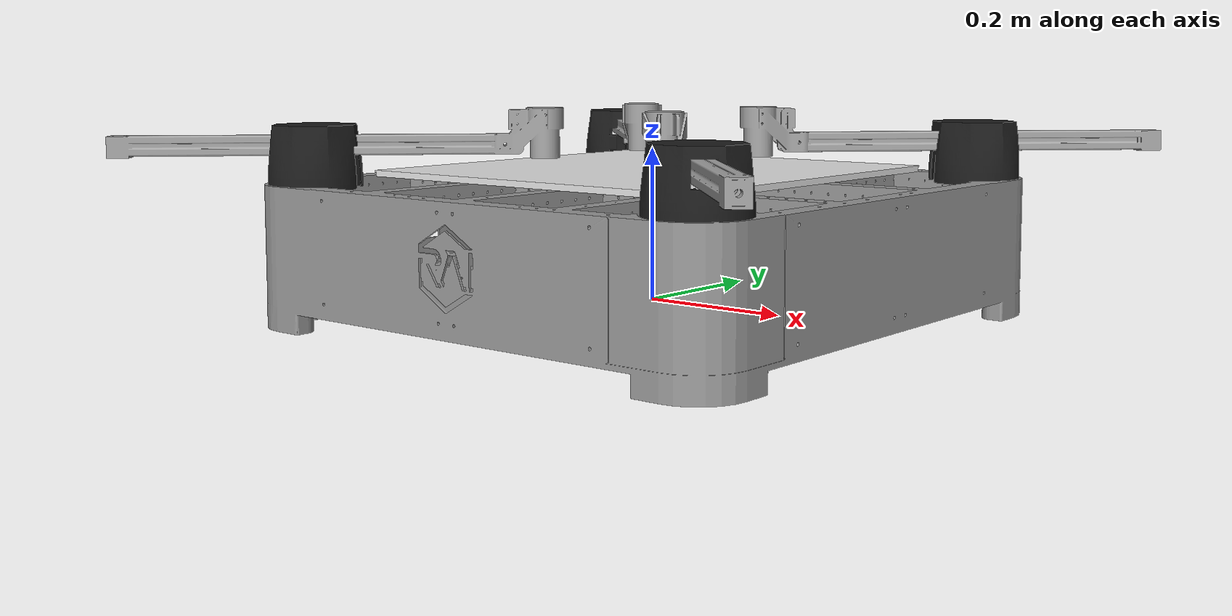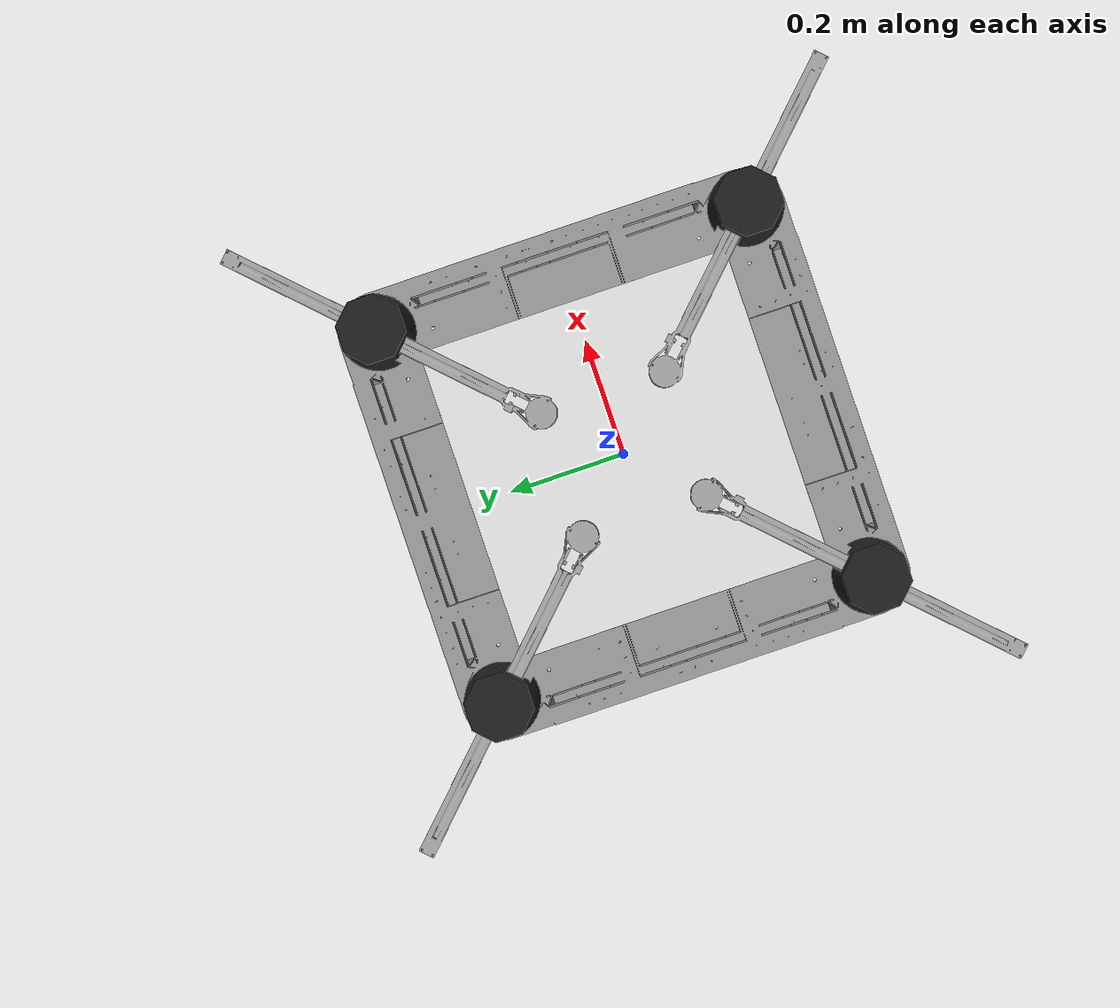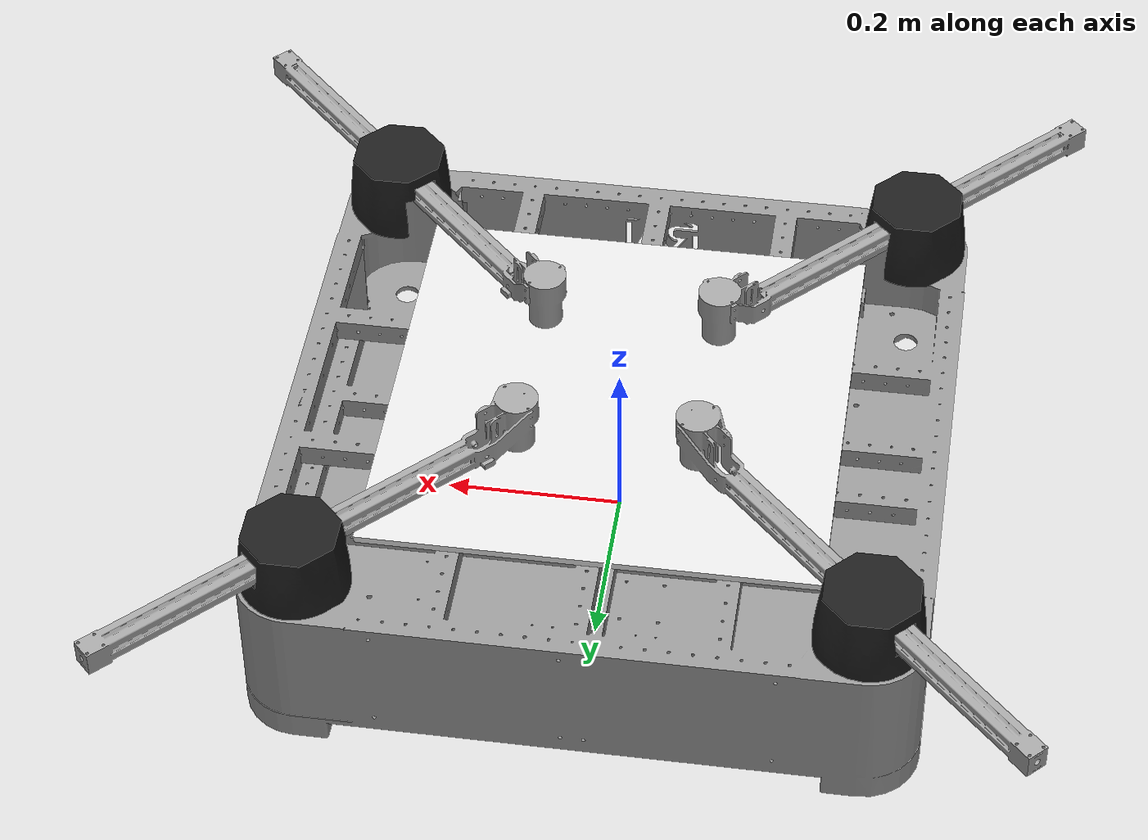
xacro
<?xml version="1.0"?>
<robot name="rai" xmlns:xacro="http://www.ros.org/wiki/xacro">
    <xacro:arg name="use_sim" default="false"/>
    <xacro:arg name="use_mock_hardware" default="false"/>

    <!-- Include generated urdf -->
    <xacro:include filename="$(find rai_description)/urdf/rai_geometry.urdf" />
    <xacro:include filename="$(find rai_description)/urdf/rai.ros2_control.xacro" />

    <link name="world"/>

    <joint name="world_fixed" type="fixed">
        <parent link="world"/>
        <child link="base_link"/>
    </joint>

    <gazebo>
        <self_collide>true</self_collide>
        <plugin filename="gz_ros2_control-system" name="gz_ros2_control::GazeboSimROS2ControlPlugin">
            <parameters>$(find rai_control)/config/ros2_controllers.yaml</parameters>
        </plugin>
    </gazebo>
</robot>

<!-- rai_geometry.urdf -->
<!-- Generated using onshape-to-robot -->
<!-- Onshape https://cad.onshape.com/documents/0031347e35259bad3644cd10/w/d8bc605a845f2cbf0a2bf906/e/dc9663babf9f6681d6773ecc -->
<robot name="rai">
  <!-- Link base_link -->
  <link name="base_link">
  </link>
  <!-- Link chassis -->
  <link name="chassis">
    <inertial>
      <origin xyz="0 0 0" rpy="0 0 0"/>
      <mass value="0.1"/>
      <inertia ixx="1e-3" ixy="0" ixz="0" iyy="1e-3" iyz="0" izz="1e-3"/>
    </inertial>
    <!-- Part chassis_parts -->
    <visual>
      <origin xyz="0.00100831 0.000428603 0.0422922" rpy="0 -0 0"/>
      <geometry>
        <mesh filename="package://rai_description/meshes/merged/chassis_visual.stl"/>
      </geometry>
      <material name="chassis_parts_material">
        <color rgba="0.6 0.6 0.6 1"/>
      </material>
    </visual>
  </link>
  <!-- Link canvas -->
  <link name="canvas">
    <inertial>
      <origin xyz="-0 -0 -0.00417976" rpy="0 0 0"/>
      <mass value="4.35842"/>
      <inertia ixx="0.10072" ixy="0" ixz="0" iyy="0.10072" iyz="0" izz="0.201392"/>
    </inertial>
    <!-- Part canvas_parts -->
    <visual>
      <origin xyz="-0 -0 -0.00417976" rpy="-3.14159 -0 1.5708"/>
      <geometry>
        <mesh filename="package://rai_description/meshes/merged/canvas_visual.stl"/>
      </geometry>
      <material name="canvas_parts_material">
        <color rgba="0.901961 0.901961 0.901961 1"/>
      </material>
    </visual>
  </link>
  <!-- Joint from chassis to canvas -->
  <joint name="canvas_revolute" type="continuous">
    <origin xyz="-0 0 0.166624" rpy="3.14159 0 1.5708"/>
    <parent link="chassis"/>
    <child link="canvas"/>
    <axis xyz="0 0 1"/>
    <limit effort="1.45" velocity="157"/>
  </joint>
  <!-- Link arm_gantry -->
  <link name="arm_gantry">
    <inertial>
      <origin xyz="-0.00282322 0.00326727 -0.0259266" rpy="0 0 0"/>
      <mass value="0.195145"/>
      <inertia ixx="0.000350023" ixy="-1.59913e-05" ixz="-1.6804e-05" iyy="0.000357074" iyz="1.92213e-05" izz="0.000463081"/>
    </inertial>
    <!-- Part arm_gantry_parts -->
    <visual>
      <origin xyz="-0.00282322 0.00326727 -0.0259266" rpy="0 0 -1.5708"/>
      <geometry>
        <mesh filename="package://rai_description/meshes/merged/arm_gantry_visual.stl"/>
      </geometry>
      <material name="arm_gantry_parts_material">
        <color rgba="0.117647 0.117647 0.117647 1"/>
      </material>
    </visual>
  </link>
  <!-- Link arm -->
  <link name="arm">
    <inertial>
      <origin xyz="-1.47334e-05 0.00795093 -0.30668" rpy="0 0 0"/>
      <mass value="0.516241"/>
      <inertia ixx="0.0168399" ixy="6.40609e-07" ixz="-7.46351e-07" iyy="0.0167911" iyz="-0.000598726" izz="0.000155782"/>
    </inertial>
    <!-- Part arm_parts -->
    <collision>
      <origin xyz="0.000495216 0.0114549 -0.253727" rpy="1.5708 -1.5696 2e-12"/>
      <geometry>
        <box size="0.51 0.03 0.03"/>
      </geometry>
    </collision>
    <collision>
      <origin xyz="0.000450512 -0.0085451 -0.548781" rpy="1.5708 0.821505 0"/>
      <geometry>
        <cylinder length="0.06" radius="0.025"/>
      </geometry>
    </collision>
    <visual>
      <origin xyz="-1.47334e-05 0.00795093 -0.30668" rpy="-1.5708 0.785398 3.14159"/>
      <geometry>
        <mesh filename="package://rai_description/meshes/merged/arm_visual.stl"/>
      </geometry>
      <material name="arm_parts_material">
        <color rgba="0.647059 0.647059 0.647059 1"/>
      </material>
    </visual>
  </link>
  <!-- Frame pen_1 (dummy link + fixed joint) -->
  <link name="pen_1">
    <origin xyz="0 0 0" rpy="0 -0 0"/>
    <inertial>
      <origin xyz="0 0 0" rpy="0 0 0"/>
      <mass value="1e-9"/>
      <inertia ixx="0" ixy="0" ixz="0" iyy="0" iyz="0" izz="0"/>
    </inertial>
  </link>
  <joint name="pen_1_frame" type="fixed">
    <origin xyz="0.0002 0.0313875 -0.549649" rpy="-1.5708 0.821505 -0"/>
    <parent link="arm"/>
    <child link="pen_1"/>
    <axis xyz="0 0 0"/>
  </joint>
  <!-- Joint from arm_gantry to arm -->
  <joint name="arm_slider_1" type="prismatic">
    <origin xyz="-0.181234 0.181234 -0.0135128" rpy="-1.5708 0 0.785398"/>
    <parent link="arm_gantry"/>
    <child link="arm"/>
    <axis xyz="0 0 1"/>
    <limit effort="90" velocity="0.25" lower="-0.1778" upper="0.174244"/>
  </joint>
  <!-- Joint from chassis to arm_gantry -->
  <joint name="arm_revolute_1" type="revolute">
    <origin xyz="-0.306801 -0.306801 0.233705" rpy="-0 0 1.5708"/>
    <parent link="chassis"/>
    <child link="arm_gantry"/>
    <axis xyz="0 0 1"/>
    <limit effort="0.61" velocity="157" lower="-3.141592653589793" upper="3.141592653589793"/>
  </joint>
  <!-- Link arm_gantry_2 -->
  <link name="arm_gantry_2">
    <inertial>
      <origin xyz="-0.00282322 0.00326727 -0.0259266" rpy="0 0 0"/>
      <mass value="0.195145"/>
      <inertia ixx="0.000350023" ixy="-1.59913e-05" ixz="-1.6804e-05" iyy="0.000357074" iyz="1.92213e-05" izz="0.000463081"/>
    </inertial>
    <!-- Part arm_gantry_2_parts -->
    <visual>
      <origin xyz="-0.00282322 0.00326727 -0.0259266" rpy="0 0 3.14159"/>
      <geometry>
        <mesh filename="package://rai_description/meshes/merged/arm_gantry_2_visual.stl"/>
      </geometry>
      <material name="arm_gantry_2_parts_material">
        <color rgba="0.117647 0.117647 0.117647 1"/>
      </material>
    </visual>
  </link>
  <!-- Link arm_2 -->
  <link name="arm_2">
    <inertial>
      <origin xyz="-1.47334e-05 0.00795093 -0.30668" rpy="0 0 0"/>
      <mass value="0.516241"/>
      <inertia ixx="0.0168399" ixy="6.40609e-07" ixz="-7.46351e-07" iyy="0.0167911" iyz="-0.000598726" izz="0.000155782"/>
    </inertial>
    <!-- Part arm_2_parts -->
    <collision>
      <origin xyz="0.000495216 0.0114549 -0.253727" rpy="1.5708 -1.5696 2e-12"/>
      <geometry>
        <box size="0.51 0.03 0.03"/>
      </geometry>
    </collision>
    <collision>
      <origin xyz="0.000450512 -0.0085451 -0.548781" rpy="1.5708 0.821505 -0"/>
      <geometry>
        <cylinder length="0.06" radius="0.025"/>
      </geometry>
    </collision>
    <visual>
      <origin xyz="-1.47334e-05 0.00795093 -0.30668" rpy="-1.5708 -0.785398 3.14159"/>
      <geometry>
        <mesh filename="package://rai_description/meshes/merged/arm_2_visual.stl"/>
      </geometry>
      <material name="arm_2_parts_material">
        <color rgba="0.647059 0.647059 0.647059 1"/>
      </material>
    </visual>
  </link>
  <!-- Frame pen_2 (dummy link + fixed joint) -->
  <link name="pen_2">
    <origin xyz="0 0 0" rpy="0 -0 0"/>
    <inertial>
      <origin xyz="0 0 0" rpy="0 0 0"/>
      <mass value="1e-9"/>
      <inertia ixx="0" ixy="0" ixz="0" iyy="0" iyz="0" izz="0"/>
    </inertial>
  </link>
  <joint name="pen_2_frame" type="fixed">
    <origin xyz="0.0002 0.0313875 -0.549649" rpy="-1.5708 0.821505 -0"/>
    <parent link="arm_2"/>
    <child link="pen_2"/>
    <axis xyz="0 0 0"/>
  </joint>
  <!-- Joint from arm_gantry_2 to arm_2 -->
  <joint name="arm_slider_2" type="prismatic">
    <origin xyz="-0.181234 0.181234 -0.0135128" rpy="-1.5708 0 0.785398"/>
    <parent link="arm_gantry_2"/>
    <child link="arm_2"/>
    <axis xyz="0 0 1"/>
    <limit effort="90" velocity="0.25" lower="-0.1778" upper="0.174244"/>
  </joint>
  <!-- Joint from chassis to arm_gantry_2 -->
  <joint name="arm_revolute_2" type="revolute">
    <origin xyz="0.306801 -0.306801 0.233705" rpy="0 0 -3.14159"/>
    <parent link="chassis"/>
    <child link="arm_gantry_2"/>
    <axis xyz="0 0 1"/>
    <limit effort="0.61" velocity="157" lower="-3.141592653589793" upper="3.141592653589793"/>
  </joint>
  <!-- Link arm_gantry_3 -->
  <link name="arm_gantry_3">
    <inertial>
      <origin xyz="-0.00282322 0.00326727 -0.0259266" rpy="0 0 0"/>
      <mass value="0.195145"/>
      <inertia ixx="0.000350023" ixy="-1.59913e-05" ixz="-1.6804e-05" iyy="0.000357074" iyz="1.92213e-05" izz="0.000463081"/>
    </inertial>
    <!-- Part arm_gantry_3_parts -->
    <visual>
      <origin xyz="-0.00282322 0.00326727 -0.0259266" rpy="0 0 1.5708"/>
      <geometry>
        <mesh filename="package://rai_description/meshes/merged/arm_gantry_3_visual.stl"/>
      </geometry>
      <material name="arm_gantry_3_parts_material">
        <color rgba="0.117647 0.117647 0.117647 1"/>
      </material>
    </visual>
  </link>
  <!-- Link arm_3 -->
  <link name="arm_3">
    <inertial>
      <origin xyz="-1.47334e-05 0.00795093 -0.30668" rpy="0 0 0"/>
      <mass value="0.516241"/>
      <inertia ixx="0.0168399" ixy="6.40609e-07" ixz="-7.46351e-07" iyy="0.0167911" iyz="-0.000598726" izz="0.000155782"/>
    </inertial>
    <!-- Part arm_3_parts -->
    <collision>
      <origin xyz="0.000495216 0.0114549 -0.253727" rpy="1.5708 -1.5696 2e-12"/>
      <geometry>
        <box size="0.51 0.03 0.03"/>
      </geometry>
    </collision>
    <collision>
      <origin xyz="0.000450512 -0.0085451 -0.548781" rpy="1.5708 0.821505 0"/>
      <geometry>
        <cylinder length="0.06" radius="0.025"/>
      </geometry>
    </collision>
    <visual>
      <origin xyz="-1.47334e-05 0.00795093 -0.30668" rpy="1.5708 -0.785398 0"/>
      <geometry>
        <mesh filename="package://rai_description/meshes/merged/arm_3_visual.stl"/>
      </geometry>
      <material name="arm_3_parts_material">
        <color rgba="0.647059 0.647059 0.647059 1"/>
      </material>
    </visual>
  </link>
  <!-- Frame pen_3 (dummy link + fixed joint) -->
  <link name="pen_3">
    <origin xyz="0 0 0" rpy="0 -0 0"/>
    <inertial>
      <origin xyz="0 0 0" rpy="0 0 0"/>
      <mass value="1e-9"/>
      <inertia ixx="0" ixy="0" ixz="0" iyy="0" iyz="0" izz="0"/>
    </inertial>
  </link>
  <joint name="pen_3_frame" type="fixed">
    <origin xyz="0.0002 0.0313875 -0.549649" rpy="-1.5708 0.821505 -0"/>
    <parent link="arm_3"/>
    <child link="pen_3"/>
    <axis xyz="0 0 0"/>
  </joint>
  <!-- Joint from arm_gantry_3 to arm_3 -->
  <joint name="arm_slider_3" type="prismatic">
    <origin xyz="-0.181234 0.181234 -0.0135128" rpy="-1.5708 0 0.785398"/>
    <parent link="arm_gantry_3"/>
    <child link="arm_3"/>
    <axis xyz="0 0 1"/>
    <limit effort="90" velocity="0.25" lower="-0.1778" upper="0.174244"/>
  </joint>
  <!-- Joint from chassis to arm_gantry_3 -->
  <joint name="arm_revolute_3" type="revolute">
    <origin xyz="0.306801 0.306801 0.233705" rpy="0 -0 -1.5708"/>
    <parent link="chassis"/>
    <child link="arm_gantry_3"/>
    <axis xyz="0 0 1"/>
    <limit effort="0.61" velocity="157" lower="-3.141592653589793" upper="3.141592653589793"/>
  </joint>
  <!-- Link arm_gantry_4 -->
  <link name="arm_gantry_4">
    <inertial>
      <origin xyz="-0.00282322 0.00326727 -0.0259266" rpy="0 0 0"/>
      <mass value="0.195145"/>
      <inertia ixx="0.000350023" ixy="-1.59913e-05" ixz="-1.6804e-05" iyy="0.000357074" iyz="1.92213e-05" izz="0.000463081"/>
    </inertial>
    <!-- Part arm_gantry_4_parts -->
    <visual>
      <origin xyz="-0.00282322 0.00326727 -0.0259266" rpy="0 0 -0"/>
      <geometry>
        <mesh filename="package://rai_description/meshes/merged/arm_gantry_4_visual.stl"/>
      </geometry>
      <material name="arm_gantry_4_parts_material">
        <color rgba="0.117647 0.117647 0.117647 1"/>
      </material>
    </visual>
  </link>
  <!-- Link arm_4 -->
  <link name="arm_4">
    <inertial>
      <origin xyz="-1.47334e-05 0.00795093 -0.30668" rpy="0 0 0"/>
      <mass value="0.516241"/>
      <inertia ixx="0.0168399" ixy="6.40609e-07" ixz="-7.46351e-07" iyy="0.0167911" iyz="-0.000598726" izz="0.000155782"/>
    </inertial>
    <!-- Part arm_4_parts -->
    <collision>
      <origin xyz="0.000495216 0.0114549 -0.253727" rpy="1.5708 -1.5696 2e-12"/>
      <geometry>
        <box size="0.51 0.03 0.03"/>
      </geometry>
    </collision>
    <collision>
      <origin xyz="0.000450512 -0.0085451 -0.548781" rpy="1.5708 0.821505 -0"/>
      <geometry>
        <cylinder length="0.06" radius="0.025"/>
      </geometry>
    </collision>
    <visual>
      <origin xyz="-1.47334e-05 0.00795093 -0.30668" rpy="1.5708 0.785398 0"/>
      <geometry>
        <mesh filename="package://rai_description/meshes/merged/arm_4_visual.stl"/>
      </geometry>
      <material name="arm_4_parts_material">
        <color rgba="0.647059 0.647059 0.647059 1"/>
      </material>
    </visual>
  </link>
  <!-- Frame pen_4 (dummy link + fixed joint) -->
  <link name="pen_4">
    <origin xyz="0 0 0" rpy="0 -0 0"/>
    <inertial>
      <origin xyz="0 0 0" rpy="0 0 0"/>
      <mass value="1e-9"/>
      <inertia ixx="0" ixy="0" ixz="0" iyy="0" iyz="0" izz="0"/>
    </inertial>
  </link>
  <joint name="pen_4_frame" type="fixed">
    <origin xyz="0.0002 0.0313875 -0.549649" rpy="-1.5708 0.821505 -0"/>
    <parent link="arm_4"/>
    <child link="pen_4"/>
    <axis xyz="0 0 0"/>
  </joint>
  <!-- Joint from arm_gantry_4 to arm_4 -->
  <joint name="arm_slider_4" type="prismatic">
    <origin xyz="-0.181234 0.181234 -0.0135128" rpy="-1.5708 0 0.785398"/>
    <parent link="arm_gantry_4"/>
    <child link="arm_4"/>
    <axis xyz="0 0 1"/>
    <limit effort="90" velocity="0.25" lower="-0.1778" upper="0.174244"/>
  </joint>
  <!-- Joint from chassis to arm_gantry_4 -->
  <joint name="arm_revolute_4" type="revolute">
    <origin xyz="-0.306801 0.306801 0.233705" rpy="-0 -0 0"/>
    <parent link="chassis"/>
    <child link="arm_gantry_4"/>
    <axis xyz="0 0 1"/>
    <limit effort="0.61" velocity="157" lower="-3.141592653589793" upper="3.141592653589793"/>
  </joint>
  <!-- Joint from base_link to chassis -->
  <joint name="base_link_to_chassis" type="fixed">
    <origin xyz="0 0 0" rpy="0 -0 0"/>
    <parent link="base_link"/>
    <child link="chassis"/>
    <axis xyz="0 0 1"/>
    <limit effort="10" velocity="10"/>
  </joint>
</robot>
